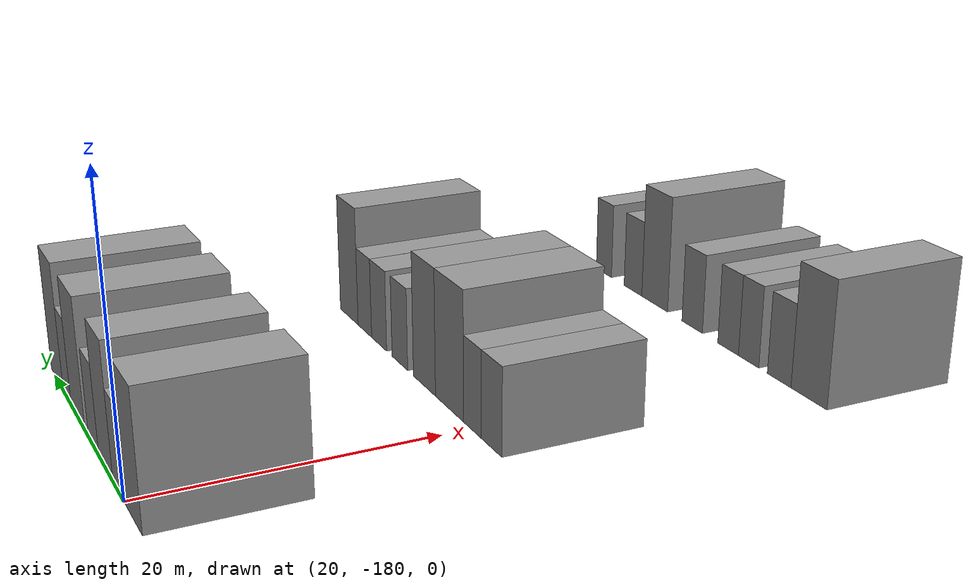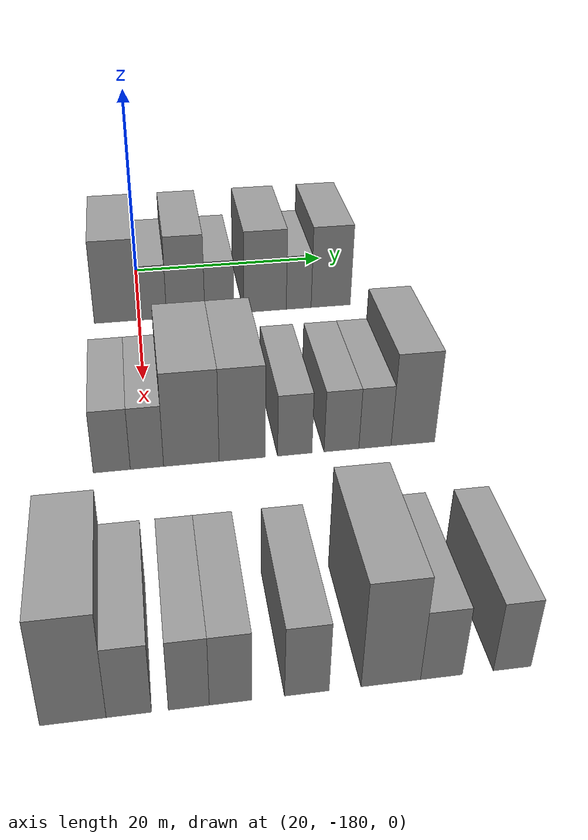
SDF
<sdf version="1.6">
 <world name="default">
  <model name="building_17">
   <static>1</static>
   <pose>25.0000 -182.2853 0 0.000000 0.000000 0.000000</pose>
   <link name="link">
    <pose>0 0 4.50 0 0 0</pose>
    <collision name="collision"><geometry><box><size>10.0000 4.1711 9.0000</size></box></geometry></collision>
    <visual name="visual">
     <cast_shadows>0</cast_shadows>
     <geometry><box><size>10.0000 4.1711 9.0000</size></box></geometry>
     <material>
      <script>
       <uri>model://grey_wall/materials/scripts</uri>
       <uri>model://grey_wall/materials/textures</uri>
       <name>vrc/grey_wall</name>
      </script>
     </material>
    </visual>
   </link>
  </model>
  <model name="building_18">
   <static>1</static>
   <pose>25.0000 -178.7559 0 0.000000 0.000000 0.000000</pose>
   <link name="link">
    <pose>0 0 3.00 0 0 0</pose>
    <collision name="collision"><geometry><box><size>10.0000 2.8878 6.0000</size></box></geometry></collision>
    <visual name="visual">
     <cast_shadows>0</cast_shadows>
     <geometry><box><size>10.0000 2.8878 6.0000</size></box></geometry>
     <material>
      <script>
       <uri>model://grey_wall/materials/scripts</uri>
       <uri>model://grey_wall/materials/textures</uri>
       <name>vrc/grey_wall</name>
      </script>
     </material>
    </visual>
   </link>
  </model>
  <model name="building_19">
   <static>1</static>
   <pose>25.0000 -175.4224 0 0.000000 0.000000 0.000000</pose>
   <link name="link">
    <pose>0 0 4.50 0 0 0</pose>
    <collision name="collision"><geometry><box><size>10.0000 3.7793 9.0000</size></box></geometry></collision>
    <visual name="visual">
     <cast_shadows>0</cast_shadows>
     <geometry><box><size>10.0000 3.7793 9.0000</size></box></geometry>
     <material>
      <script>
       <uri>model://grey_wall/materials/scripts</uri>
       <uri>model://grey_wall/materials/textures</uri>
       <name>vrc/grey_wall</name>
      </script>
     </material>
    </visual>
   </link>
  </model>
  <model name="building_20">
   <static>1</static>
   <pose>25.0000 -172.0782 0 0.000000 0.000000 0.000000</pose>
   <link name="link">
    <pose>0 0 3.00 0 0 0</pose>
    <collision name="collision"><geometry><box><size>10.0000 2.9092 6.0000</size></box></geometry></collision>
    <visual name="visual">
     <cast_shadows>0</cast_shadows>
     <geometry><box><size>10.0000 2.9092 6.0000</size></box></geometry>
     <material>
      <script>
       <uri>model://grey_wall/materials/scripts</uri>
       <uri>model://grey_wall/materials/textures</uri>
       <name>vrc/grey_wall</name>
      </script>
     </material>
    </visual>
   </link>
  </model>
  <model name="building_21">
   <static>1</static>
   <pose>25.0000 -167.4889 0 0.000000 0.000000 0.000000</pose>
   <link name="link">
    <pose>0 0 4.50 0 0 0</pose>
    <collision name="collision"><geometry><box><size>10.0000 4.2693 9.0000</size></box></geometry></collision>
    <visual name="visual">
     <cast_shadows>0</cast_shadows>
     <geometry><box><size>10.0000 4.2693 9.0000</size></box></geometry>
     <material>
      <script>
       <uri>model://grey_wall/materials/scripts</uri>
       <uri>model://grey_wall/materials/textures</uri>
       <name>vrc/grey_wall</name>
      </script>
     </material>
    </visual>
   </link>
  </model>
  <model name="building_22">
   <static>1</static>
   <pose>25.0000 -164.0879 0 0.000000 0.000000 0.000000</pose>
   <link name="link">
    <pose>0 0 3.00 0 0 0</pose>
    <collision name="collision"><geometry><box><size>10.0000 2.5327 6.0000</size></box></geometry></collision>
    <visual name="visual">
     <cast_shadows>0</cast_shadows>
     <geometry><box><size>10.0000 2.5327 6.0000</size></box></geometry>
     <material>
      <script>
       <uri>model://grey_wall/materials/scripts</uri>
       <uri>model://grey_wall/materials/textures</uri>
       <name>vrc/grey_wall</name>
      </script>
     </material>
    </visual>
   </link>
  </model>
  <model name="building_23">
   <static>1</static>
   <pose>25.0000 -160.8175 0 0.000000 0.000000 0.000000</pose>
   <link name="link">
    <pose>0 0 4.50 0 0 0</pose>
    <collision name="collision"><geometry><box><size>10.0000 4.0081 9.0000</size></box></geometry></collision>
    <visual name="visual">
     <cast_shadows>0</cast_shadows>
     <geometry><box><size>10.0000 4.0081 9.0000</size></box></geometry>
     <material>
      <script>
       <uri>model://grey_wall/materials/scripts</uri>
       <uri>model://grey_wall/materials/textures</uri>
       <name>vrc/grey_wall</name>
      </script>
     </material>
    </visual>
   </link>
  </model>
  <model name="building_140">
   <static>1</static>
   <pose>47.0000 -182.9211 0 0.000000 0.000000 0.000000</pose>
   <link name="link">
    <pose>0 0 3.00 0 0 0</pose>
    <collision name="collision"><geometry><box><size>10.0000 2.8992 6.0000</size></box></geometry></collision>
    <visual name="visual">
     <cast_shadows>0</cast_shadows>
     <geometry><box><size>10.0000 2.8992 6.0000</size></box></geometry>
     <material>
      <script>
       <uri>model://grey_wall/materials/scripts</uri>
       <uri>model://grey_wall/materials/textures</uri>
       <name>vrc/grey_wall</name>
      </script>
     </material>
    </visual>
   </link>
  </model>
  <model name="building_141">
   <static>1</static>
   <pose>47.0000 -180.1619 0 0.000000 0.000000 0.000000</pose>
   <link name="link">
    <pose>0 0 3.00 0 0 0</pose>
    <collision name="collision"><geometry><box><size>10.0000 2.6192 6.0000</size></box></geometry></collision>
    <visual name="visual">
     <cast_shadows>0</cast_shadows>
     <geometry><box><size>10.0000 2.6192 6.0000</size></box></geometry>
     <material>
      <script>
       <uri>model://grey_wall/materials/scripts</uri>
       <uri>model://grey_wall/materials/textures</uri>
       <name>vrc/grey_wall</name>
      </script>
     </material>
    </visual>
   </link>
  </model>
  <model name="building_142">
   <static>1</static>
   <pose>47.0000 -176.6361 0 0.000000 0.000000 0.000000</pose>
   <link name="link">
    <pose>0 0 4.50 0 0 0</pose>
    <collision name="collision"><geometry><box><size>10.0000 4.4325 9.0000</size></box></geometry></collision>
    <visual name="visual">
     <cast_shadows>0</cast_shadows>
     <geometry><box><size>10.0000 4.4325 9.0000</size></box></geometry>
     <material>
      <script>
       <uri>model://grey_wall/materials/scripts</uri>
       <uri>model://grey_wall/materials/textures</uri>
       <name>vrc/grey_wall</name>
      </script>
     </material>
    </visual>
   </link>
  </model>
  <model name="building_143">
   <static>1</static>
   <pose>47.0000 -172.5653 0 0.000000 0.000000 0.000000</pose>
   <link name="link">
    <pose>0 0 4.50 0 0 0</pose>
    <collision name="collision"><geometry><box><size>10.0000 3.7090 9.0000</size></box></geometry></collision>
    <visual name="visual">
     <cast_shadows>0</cast_shadows>
     <geometry><box><size>10.0000 3.7090 9.0000</size></box></geometry>
     <material>
      <script>
       <uri>model://grey_wall/materials/scripts</uri>
       <uri>model://grey_wall/materials/textures</uri>
       <name>vrc/grey_wall</name>
      </script>
     </material>
    </visual>
   </link>
  </model>
  <model name="building_144">
   <static>1</static>
   <pose>47.0000 -168.3067 0 0.000000 0.000000 0.000000</pose>
   <link name="link">
    <pose>0 0 3.00 0 0 0</pose>
    <collision name="collision"><geometry><box><size>10.0000 2.8083 6.0000</size></box></geometry></collision>
    <visual name="visual">
     <cast_shadows>0</cast_shadows>
     <geometry><box><size>10.0000 2.8083 6.0000</size></box></geometry>
     <material>
      <script>
       <uri>model://grey_wall/materials/scripts</uri>
       <uri>model://grey_wall/materials/textures</uri>
       <name>vrc/grey_wall</name>
      </script>
     </material>
    </visual>
   </link>
  </model>
  <model name="building_145">
   <static>1</static>
   <pose>47.0000 -164.4655 0 0.000000 0.000000 0.000000</pose>
   <link name="link">
    <pose>0 0 3.00 0 0 0</pose>
    <collision name="collision"><geometry><box><size>10.0000 2.8742 6.0000</size></box></geometry></collision>
    <visual name="visual">
     <cast_shadows>0</cast_shadows>
     <geometry><box><size>10.0000 2.8742 6.0000</size></box></geometry>
     <material>
      <script>
       <uri>model://grey_wall/materials/scripts</uri>
       <uri>model://grey_wall/materials/textures</uri>
       <name>vrc/grey_wall</name>
      </script>
     </material>
    </visual>
   </link>
  </model>
  <model name="building_146">
   <static>1</static>
   <pose>47.0000 -161.6875 0 0.000000 0.000000 0.000000</pose>
   <link name="link">
    <pose>0 0 3.00 0 0 0</pose>
    <collision name="collision"><geometry><box><size>10.0000 2.6816 6.0000</size></box></geometry></collision>
    <visual name="visual">
     <cast_shadows>0</cast_shadows>
     <geometry><box><size>10.0000 2.6816 6.0000</size></box></geometry>
     <material>
      <script>
       <uri>model://grey_wall/materials/scripts</uri>
       <uri>model://grey_wall/materials/textures</uri>
       <name>vrc/grey_wall</name>
      </script>
     </material>
    </visual>
   </link>
  </model>
  <model name="building_147">
   <static>1</static>
   <pose>47.0000 -158.5149 0 0.000000 0.000000 0.000000</pose>
   <link name="link">
    <pose>0 0 4.50 0 0 0</pose>
    <collision name="collision"><geometry><box><size>10.0000 3.6636 9.0000</size></box></geometry></collision>
    <visual name="visual">
     <cast_shadows>0</cast_shadows>
     <geometry><box><size>10.0000 3.6636 9.0000</size></box></geometry>
     <material>
      <script>
       <uri>model://grey_wall/materials/scripts</uri>
       <uri>model://grey_wall/materials/textures</uri>
       <name>vrc/grey_wall</name>
      </script>
     </material>
    </visual>
   </link>
  </model>
  <model name="building_259">
   <static>1</static>
   <pose>69.0000 -185.4468 0 0.000000 0.000000 0.000000</pose>
   <link name="link">
    <pose>0 0 4.50 0 0 0</pose>
    <collision name="collision"><geometry><box><size>10.0000 3.8967 9.0000</size></box></geometry></collision>
    <visual name="visual">
     <cast_shadows>0</cast_shadows>
     <geometry><box><size>10.0000 3.8967 9.0000</size></box></geometry>
     <material>
      <script>
       <uri>model://grey_wall/materials/scripts</uri>
       <uri>model://grey_wall/materials/textures</uri>
       <name>vrc/grey_wall</name>
      </script>
     </material>
    </visual>
   </link>
  </model>
  <model name="building_260">
   <static>1</static>
   <pose>69.0000 -182.1530 0 0.000000 0.000000 0.000000</pose>
   <link name="link">
    <pose>0 0 3.00 0 0 0</pose>
    <collision name="collision"><geometry><box><size>10.0000 2.6909 6.0000</size></box></geometry></collision>
    <visual name="visual">
     <cast_shadows>0</cast_shadows>
     <geometry><box><size>10.0000 2.6909 6.0000</size></box></geometry>
     <material>
      <script>
       <uri>model://grey_wall/materials/scripts</uri>
       <uri>model://grey_wall/materials/textures</uri>
       <name>vrc/grey_wall</name>
      </script>
     </material>
    </visual>
   </link>
  </model>
  <model name="building_261">
   <static>1</static>
   <pose>69.0000 -178.5758 0 0.000000 0.000000 0.000000</pose>
   <link name="link">
    <pose>0 0 3.00 0 0 0</pose>
    <collision name="collision"><geometry><box><size>10.0000 2.4635 6.0000</size></box></geometry></collision>
    <visual name="visual">
     <cast_shadows>0</cast_shadows>
     <geometry><box><size>10.0000 2.4635 6.0000</size></box></geometry>
     <material>
      <script>
       <uri>model://grey_wall/materials/scripts</uri>
       <uri>model://grey_wall/materials/textures</uri>
       <name>vrc/grey_wall</name>
      </script>
     </material>
    </visual>
   </link>
  </model>
  <model name="building_262">
   <static>1</static>
   <pose>69.0000 -176.0508 0 0.000000 0.000000 0.000000</pose>
   <link name="link">
    <pose>0 0 3.00 0 0 0</pose>
    <collision name="collision"><geometry><box><size>10.0000 2.5866 6.0000</size></box></geometry></collision>
    <visual name="visual">
     <cast_shadows>0</cast_shadows>
     <geometry><box><size>10.0000 2.5866 6.0000</size></box></geometry>
     <material>
      <script>
       <uri>model://grey_wall/materials/scripts</uri>
       <uri>model://grey_wall/materials/textures</uri>
       <name>vrc/grey_wall</name>
      </script>
     </material>
    </visual>
   </link>
  </model>
  <model name="building_263">
   <static>1</static>
   <pose>69.0000 -171.3784 0 0.000000 0.000000 0.000000</pose>
   <link name="link">
    <pose>0 0 3.00 0 0 0</pose>
    <collision name="collision"><geometry><box><size>10.0000 2.7582 6.0000</size></box></geometry></collision>
    <visual name="visual">
     <cast_shadows>0</cast_shadows>
     <geometry><box><size>10.0000 2.7582 6.0000</size></box></geometry>
     <material>
      <script>
       <uri>model://grey_wall/materials/scripts</uri>
       <uri>model://grey_wall/materials/textures</uri>
       <name>vrc/grey_wall</name>
      </script>
     </material>
    </visual>
   </link>
  </model>
  <model name="building_264">
   <static>1</static>
   <pose>69.0000 -166.1239 0 0.000000 0.000000 0.000000</pose>
   <link name="link">
    <pose>0 0 4.50 0 0 0</pose>
    <collision name="collision"><geometry><box><size>10.0000 3.7508 9.0000</size></box></geometry></collision>
    <visual name="visual">
     <cast_shadows>0</cast_shadows>
     <geometry><box><size>10.0000 3.7508 9.0000</size></box></geometry>
     <material>
      <script>
       <uri>model://grey_wall/materials/scripts</uri>
       <uri>model://grey_wall/materials/textures</uri>
       <name>vrc/grey_wall</name>
      </script>
     </material>
    </visual>
   </link>
  </model>
  <model name="building_265">
   <static>1</static>
   <pose>69.0000 -162.9065 0 0.000000 0.000000 0.000000</pose>
   <link name="link">
    <pose>0 0 3.00 0 0 0</pose>
    <collision name="collision"><geometry><box><size>10.0000 2.6839 6.0000</size></box></geometry></collision>
    <visual name="visual">
     <cast_shadows>0</cast_shadows>
     <geometry><box><size>10.0000 2.6839 6.0000</size></box></geometry>
     <material>
      <script>
       <uri>model://grey_wall/materials/scripts</uri>
       <uri>model://grey_wall/materials/textures</uri>
       <name>vrc/grey_wall</name>
      </script>
     </material>
    </visual>
   </link>
  </model>
  <model name="building_266">
   <static>1</static>
   <pose>69.0000 -158.3387 0 0.000000 0.000000 0.000000</pose>
   <link name="link">
    <pose>0 0 3.00 0 0 0</pose>
    <collision name="collision"><geometry><box><size>10.0000 2.4518 6.0000</size></box></geometry></collision>
    <visual name="visual">
     <cast_shadows>0</cast_shadows>
     <geometry><box><size>10.0000 2.4518 6.0000</size></box></geometry>
     <material>
      <script>
       <uri>model://grey_wall/materials/scripts</uri>
       <uri>model://grey_wall/materials/textures</uri>
       <name>vrc/grey_wall</name>
      </script>
     </material>
    </visual>
   </link>
  </model>
 </world>
</sdf>
